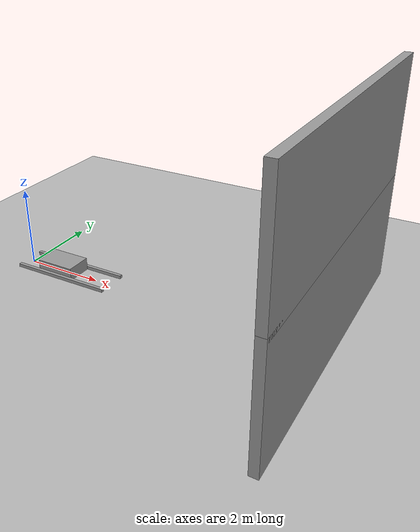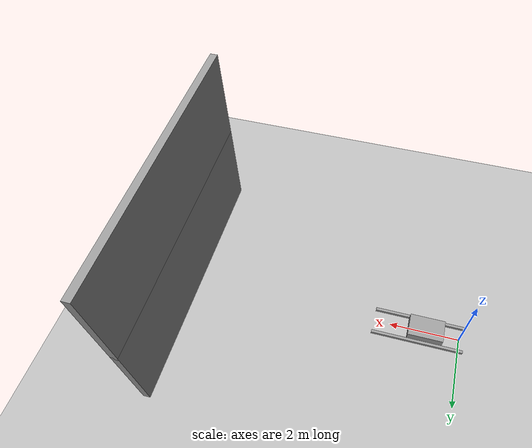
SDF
<sdf version="1.7">
 <world name="default">
  <light name="sun" type="directional">
   <pose>0 0 10 0 -0 0</pose>
   <diffuse>0.8 0.8 0.8 1</diffuse>
   <specular>0.2 0.2 0.2 1</specular>
   <attenuation>
    <range>1000</range>
    <constant>0.9</constant>
    <linear>0.01</linear>
    <quadratic>0.001</quadratic>
   </attenuation>
   <direction>-0.5 0.1 -0.9</direction>
   <spot><inner_angle>0</inner_angle><outer_angle>0</outer_angle><falloff>0</falloff></spot>
  </light>
  <model name="ground_plane">
   <static>1</static>
   <link name="link">
    <collision name="collision">
     <geometry><plane><normal>0 0 1</normal><size>100 100</size></plane></geometry>
     <surface>
      <contact><collide_bitmask>65535</collide_bitmask></contact>
      <friction><ode><mu>100</mu><mu2>50</mu2></ode></friction>
     </surface>
    </collision>
    <visual name="visual">
     <cast_shadows>0</cast_shadows>
     <geometry><plane><normal>0 0 1</normal><size>100 100</size></plane></geometry>
     <material>
      <script><uri>file://media/materials/scripts/gazebo.material</uri><name>Gazebo/Grey</name></script>
     </material>
    </visual>
   </link>
  </model>
  <gravity>0 0 -9.8</gravity>
  <magnetic_field>6e-06 2.3e-05 -4.2e-05</magnetic_field>
  <atmosphere type="adiabatic"/>
  <physics type="ode">
   <max_step_size>0.001</max_step_size>
   <real_time_factor>1</real_time_factor>
   <real_time_update_rate>1000</real_time_update_rate>
  </physics>
  <scene>
   <ambient>0.4 0.4 0.4 1</ambient>
   <background>0.7 0.7 0.7 1</background>
   <shadows>0</shadows>
   <sky><clouds><speed>12</speed></clouds></sky>
  </scene>
  <spherical_coordinates>
   <surface_model>EARTH_WGS84</surface_model>
   <latitude_deg>0</latitude_deg>
   <longitude_deg>0</longitude_deg>
   <elevation>0</elevation>
   <heading_deg>0</heading_deg>
  </spherical_coordinates>
  <model name="Floor">
   <link name="main">
    <pose>0 0 0.01 0 -0 0</pose>
    <collision name="main_Collision"><geometry><box><size>40 40 0.01</size></box></geometry></collision>
    <visual name="main_Visual">
     <geometry><box><size>40 40 0.01</size></box></geometry>
     <material>
      <script>
       <uri>model://Floor/materials/scripts</uri>
       <uri>model://Floor/materials/textures</uri>
       <name>floor</name>
      </script>
     </material>
    </visual>
   </link>
   <static>1</static>
   <pose>0.892172 0.473756 0 0 -0 0</pose>
  </model>
  <model name="grey_wall">
   <static>1</static>
   <link name="link">
    <pose>0 0 1.4 0 -0 0</pose>
    <collision name="collision"><geometry><box><size>7.5 0.2 2.8</size></box></geometry></collision>
    <visual name="visual">
     <cast_shadows>0</cast_shadows>
     <geometry><box><size>7.5 0.2 2.8</size></box></geometry>
     <material>
      <script>
       <uri>model://grey_wall/materials/scripts</uri>
       <uri>model://grey_wall/materials/textures</uri>
       <name>vrc/grey_wall</name>
      </script>
     </material>
    </visual>
   </link>
   <pose>8 0 0 0 -0 1.5707</pose>
  </model>
  <model name="grey_wall_clone">
   <static>1</static>
   <link name="link">
    <pose>0 0 1.4 0 -0 0</pose>
    <collision name="collision"><geometry><box><size>7.5 0.2 2.8</size></box></geometry></collision>
    <visual name="visual">
     <cast_shadows>0</cast_shadows>
     <geometry><box><size>7.5 0.2 2.8</size></box></geometry>
     <material>
      <script>
       <uri>model://grey_wall/materials/scripts</uri>
       <uri>model://grey_wall/materials/textures</uri>
       <name>vrc/grey_wall</name>
      </script>
     </material>
    </visual>
   </link>
   <pose>8 0 2.7 0 -0 1.5707</pose>
  </model>
  <light name="user_spot_light_0" type="spot">
   <pose>2.97984 0.967212 1 0 -0 0</pose>
   <diffuse>0.5 0.5 0.5 1</diffuse>
   <specular>0.1 0.1 0.1 1</specular>
   <direction>0 0 -1</direction>
   <attenuation>
    <range>20</range>
    <constant>0.5</constant>
    <linear>0.01</linear>
    <quadratic>0.001</quadratic>
   </attenuation>
   <cast_shadows>0</cast_shadows>
   <spot><inner_angle>0.6</inner_angle><outer_angle>1</outer_angle><falloff>1</falloff></spot>
  </light>
  <model name="unit_box">
   <pose>0.979766 0.006726 0.176437 -4e-06 -0 0.000291</pose>
   <link name="link">
    <inertial>
     <mass>1</mass>
     <inertia>
      <ixx>0.166667</ixx>
      <ixy>0</ixy>
      <ixz>0</ixz>
      <iyy>0.166667</iyy>
      <iyz>0</iyz>
      <izz>0.166667</izz>
     </inertia>
    </inertial>
    <collision name="collision">
     <geometry><box><size>1 0.648909 0.322877</size></box></geometry>
     <surface><friction><ode><mu>0.0</mu><mu2>0.0</mu2></ode></friction></surface>
    </collision>
    <visual name="visual">
     <geometry><box><size>1 0.648909 0.322877</size></box></geometry>
     <material>
      <script><name>Gazebo/Grey</name><uri>file://media/materials/scripts/gazebo.material</uri></script>
     </material>
    </visual>
   </link>
  </model>
  <model name="unit_box_0">
   <pose>1.16904 -0.358714 0.05732 4e-06 -0.000174 -6.6e-05</pose>
   <link name="link">
    <inertial>
     <mass>1</mass>
     <inertia>
      <ixx>0.166667</ixx>
      <ixy>0</ixy>
      <ixz>0</ixz>
      <iyy>0.166667</iyy>
      <iyz>0</iyz>
      <izz>0.166667</izz>
     </inertia>
    </inertial>
    <collision name="collision">
     <geometry><box><size>2.61866 0.0815848 0.0850937</size></box></geometry>
    </collision>
    <visual name="visual">
     <geometry><box><size>2.61866 0.0815848 0.0850937</size></box></geometry>
     <material>
      <script><name>Gazebo/Grey</name><uri>file://media/materials/scripts/gazebo.material</uri></script>
     </material>
    </visual>
   </link>
  </model>
  <model name="unit_box_0_clone">
   <pose>1.18744 0.375186 0.05732 -4e-06 0.000174 -0.000615</pose>
   <link name="link">
    <inertial>
     <mass>1</mass>
     <inertia>
      <ixx>0.166667</ixx>
      <ixy>0</ixy>
      <ixz>0</ixz>
      <iyy>0.166667</iyy>
      <iyz>0</iyz>
      <izz>0.166667</izz>
     </inertia>
    </inertial>
    <collision name="collision"><geometry><box><size>2.61866 0.081585 0.085094</size></box></geometry></collision>
    <visual name="visual">
     <geometry><box><size>2.61866 0.081585 0.085094</size></box></geometry>
     <material>
      <script><name>Gazebo/Grey</name><uri>file://media/materials/scripts/gazebo.material</uri></script>
     </material>
    </visual>
   </link>
  </model>
 </world>
</sdf>
